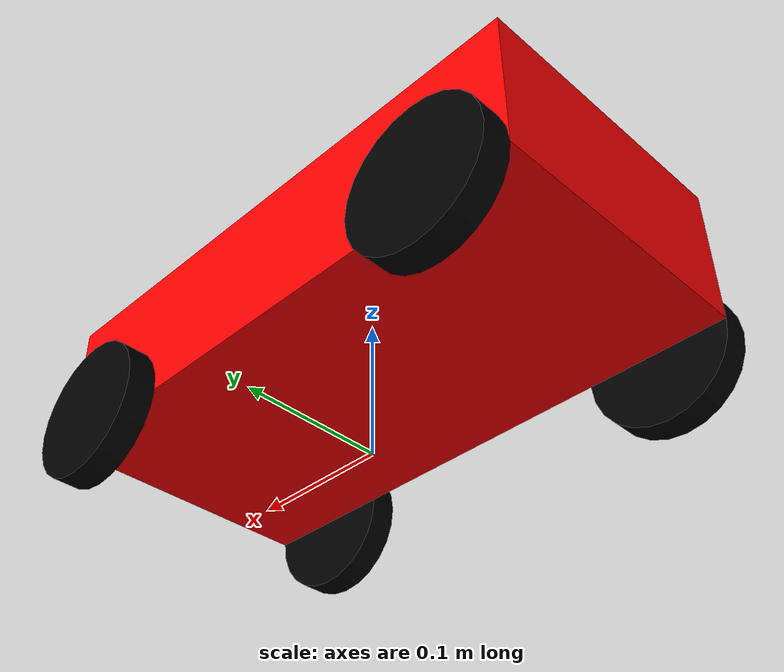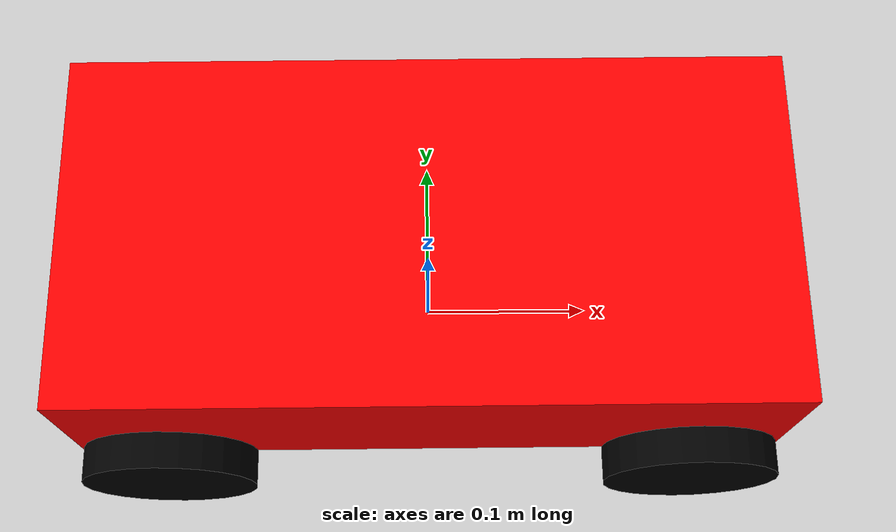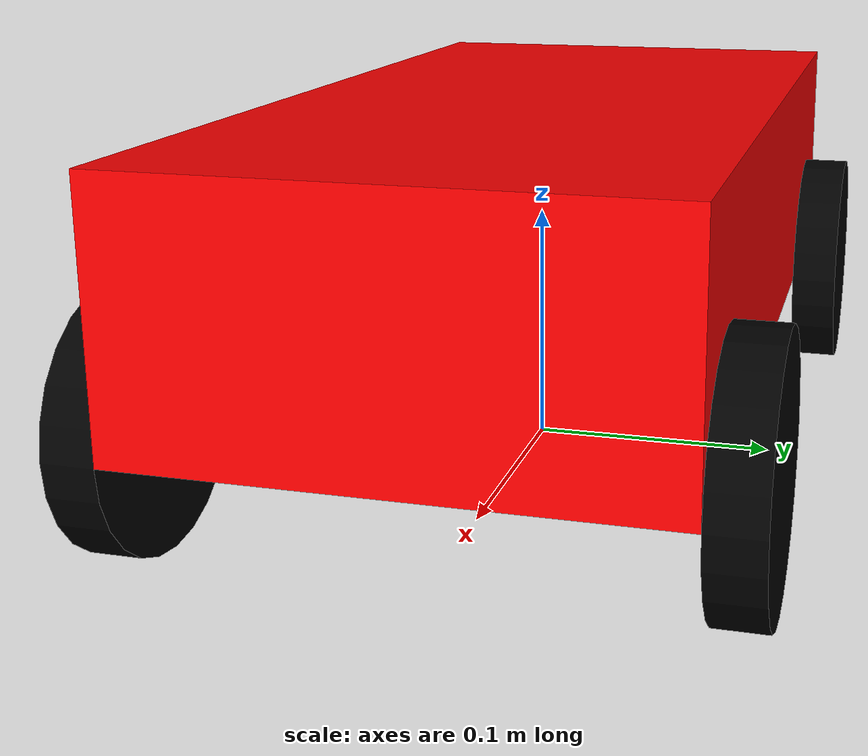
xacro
<?xml version = "1.0"?>

<robot xmlns:xacro="http://www.ros.org/wiki/xacro">
    <!-- Properties -->
    <xacro:property name = "robot_amr" value = "four_wheeled_differential_drive_robot"/>
    <xacro:property name = "wheel_radius" value = "0.05"/>
    <xacro:property name = "wheel_width" value = "0.02"/>
    <xacro:property name = "chassis_length" value = "0.4"/>
    <xacro:property name = "chassis_width" value = "0.2"/>
    <xacro:property name = "chassis_height" value = "0.1"/>

    <!-- BASE LINK (CHASSIS)-->
    <link name = "base_footprint"/>

    <link name = "base_link">
        <visual>
            <geometry>
                <box size = "${chassis_length} ${chassis_width} ${chassis_height}"/>
            </geometry>
            <origin xyz= "0 0 ${chassis_height/2}" rpy = "0 0 0"/>
            <material name = "red">
                <color rgba = "1 0.0 0.0 1.0"/>
            </material>
        </visual>

        <xacro:box_inertia m="5.0" l="${chassis_length}" w="${chassis_width}" h="${chassis_height}"
                           xyz="0 0 ${chassis_height/2.0}" rpy="0 0 0"/>

        <collision>
            <geometry>
                <box size = "${chassis_length} ${chassis_width} ${chassis_height}"/>
            </geometry>
            <origin xyz= "0 0 ${chassis_height/2}" rpy = "0 0 0"/>
        </collision>

    </link>

    <!-- WHEELS MACRO -->
    <xacro:macro name = "wheel" params = "prefix x y">
        <link name = "${prefix}_wheel">
            <visual>
                <geometry>
                <cylinder radius = "${wheel_radius}" length = "${wheel_width}"/>
                </geometry>
                <origin xyz= "0 0 0" rpy= "${pi/2.0} 0 0"/>
                <material name = "black">
                    <color rgba = "0.0 0.0 0.0 1.0"/>
                </material>
            </visual>

            <xacro:cylinder_inertia m="1.0" r="${wheel_radius}" h="${wheel_width}"
                                    xyz="0 0 0" rpy= "${pi/2.0} 0 0"/>

            <collision>
                <geometry>
                    <cylinder radius = "${wheel_radius}" length = "${wheel_width}"/>
                </geometry>
                <origin xyz = "0 0 0" rpy = "${pi/2} 0 0"/>
            </collision>

        </link>

        <joint name = "${prefix}_wheel_joint" type = "continuous">
            <parent link = "base_link"/>
            <child link = "${prefix}_wheel"/>
            <origin xyz = "${x} ${y} 0" rpy = "0 0 0"/>
            <axis xyz  = "0 1 0"/>
        </joint>
    </xacro:macro>

        <joint name = "base_footprint_joint" type = "fixed">
            <parent link = "base_footprint"/>
            <child link = "base_link"/>
            <origin xyz = "0 0 0.05" rpy = "0 0 0"/>
        </joint>

    <!-- ======== 4 WHEELS ========= -->
    <xacro:wheel prefix = "front_left" x = "0.15" y = "0.11"/>
    <xacro:wheel prefix = "front_right" x = "0.15" y = "-0.11"/>
    <xacro:wheel prefix = "rear_left" x = "-0.15" y = "0.11"/>
    <xacro:wheel prefix = "rear_right" x = "-0.15" y = "-0.11"/>

</robot>
